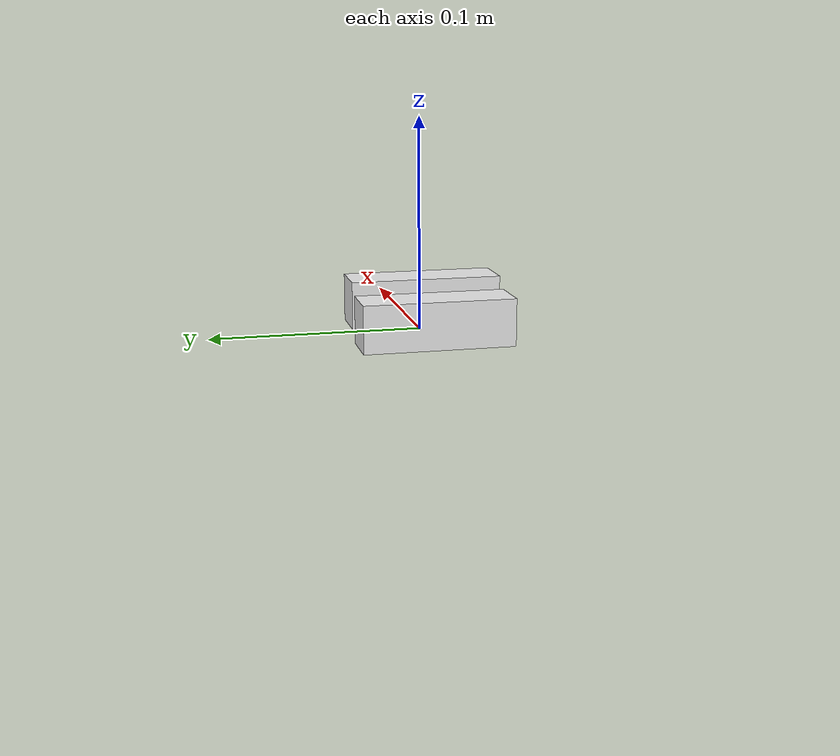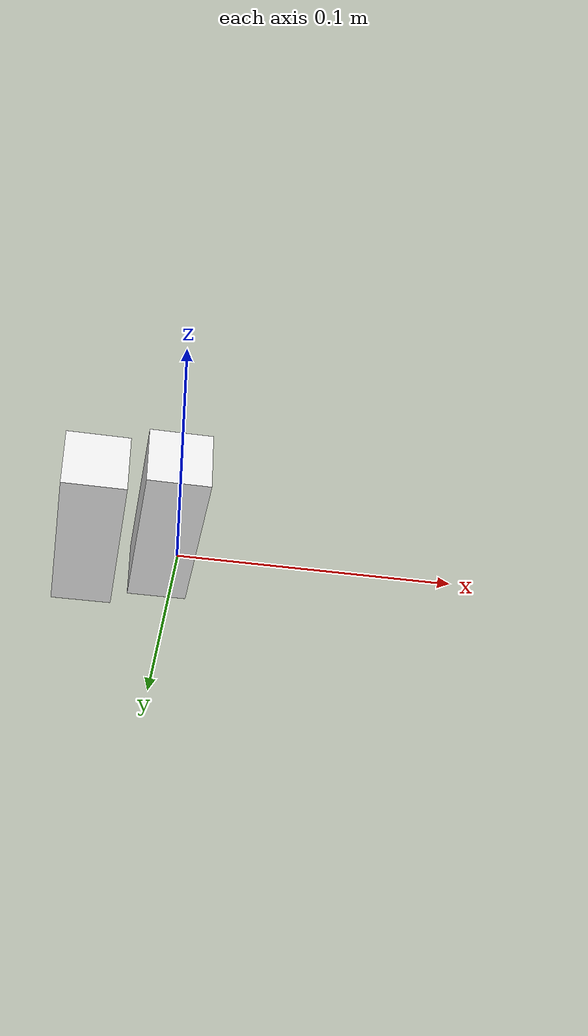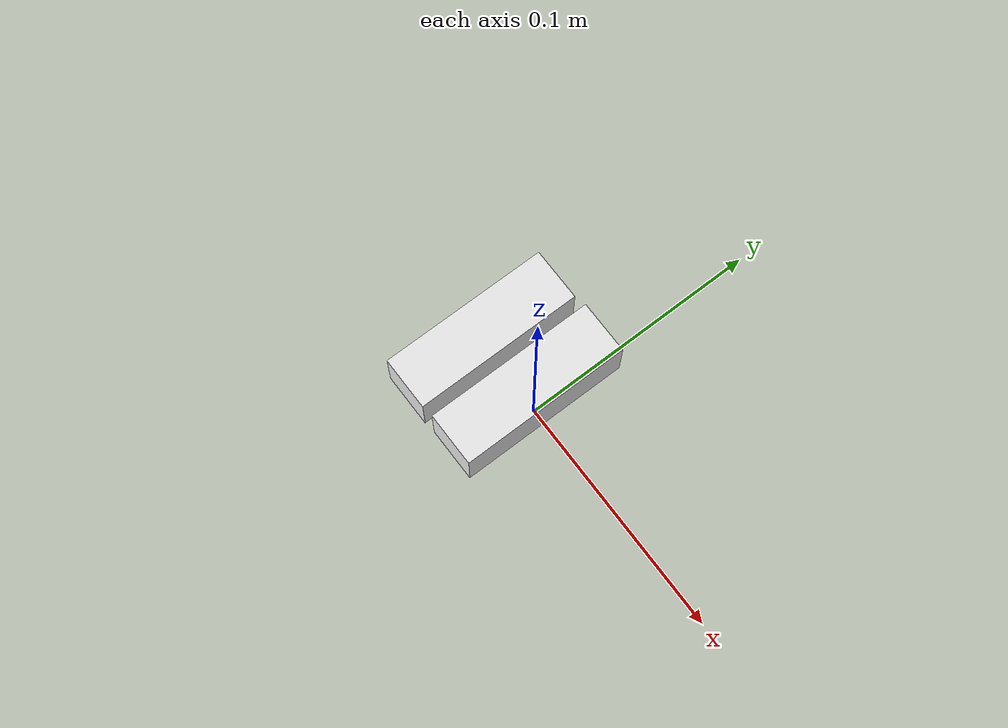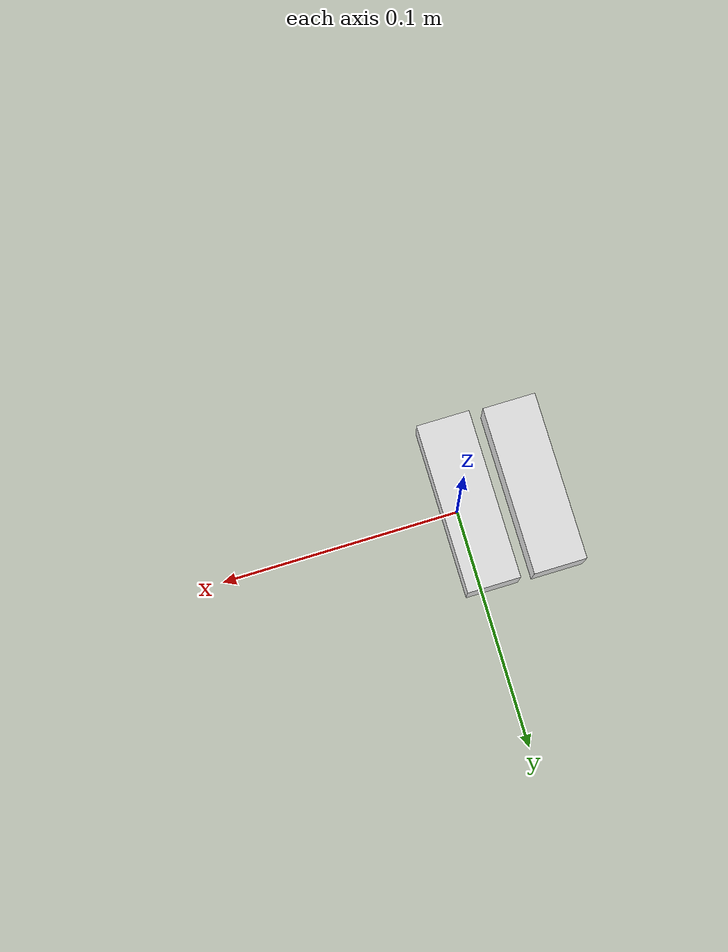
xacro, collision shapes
<?xml version="1.0"?>
<robot xmlns:sensor="http://playerstage.sourceforge.net/gazebo/xmlschema/#sensor"
       xmlns:controller="http://playerstage.sourceforge.net/gazebo/xmlschema/#controller"
       xmlns:interface="http://playerstage.sourceforge.net/gazebo/xmlschema/#interface"
       xmlns:xacro="http://www.ros.org/wiki/xacro"
       name="robotis_mini" >

  <xacro:include filename="materials.urdf.xacro" />
  <xacro:include filename="common.urdf.xacro" />
  <xacro:include filename="servo.urdf.xacro" />

  <xacro:include filename="base.urdf.xacro" />
  <xacro:include filename="body.urdf.xacro" />
  <xacro:include filename="arm.urdf.xacro" />
  <xacro:include filename="hand.urdf.xacro" />
  <xacro:include filename="leg.urdf.xacro" />

  <xacro:include filename="ros2_control.urdf.xacro" />

  <xacro:robotis_mini_ros2 />

  <xacro:robotis_mini_base name="base"/>

  <xacro:robotis_mini_body parent="base_link" />

  <xacro:robotis_mini_arm side="l" reflect="1" parent="l_shoulder_anchor_link" />
  <xacro:robotis_mini_arm side="r" reflect="-1" parent="r_shoulder_anchor_link" />

  <xacro:robotis_mini_leg side="l" reflect="1" parent="l_hip_anchor_link" />
  <xacro:robotis_mini_leg side="r" reflect="-1" parent="r_hip_anchor_link" />

  <gazebo reference="r_forefoot_link">
    <sensor name="r_forefoot_link_contact" type="contact">
      <always_on>true</always_on>
      <update_rate>30</update_rate>
      <contact>
        <collision>r_foot_link_fixed_joint_lump__r_forefoot_link_collision_1</collision>
      </contact>
    </sensor>
  </gazebo>

  <gazebo reference="l_forefoot_link">
    <sensor name="l_forefoot_link_contact" type="contact">
      <always_on>true</always_on>
      <update_rate>30</update_rate>
      <contact>
        <collision>l_foot_link_fixed_joint_lump__l_forefoot_link_collision_1</collision>
      </contact>
    </sensor>
  </gazebo>

  <gazebo reference="r_sole_link">
    <sensor name="r_sole_link_contact" type="contact">
      <always_on>true</always_on>
      <update_rate>30</update_rate>
      <contact>
        <collision>r_foot_link_fixed_joint_lump__r_sole_link_collision_2</collision>
      </contact>
    </sensor>
  </gazebo>

  <gazebo reference="l_sole_link">
    <sensor name="l_sole_link_contact" type="contact">
      <always_on>true</always_on>
      <update_rate>30</update_rate>
      <contact>
        <collision>l_foot_link_fixed_joint_lump__l_sole_link_collision_2</collision>
      </contact>
    </sensor>
  </gazebo>

   <!-- camera -->
  <gazebo reference="camera_link">
    <sensor type="camera" name="camera">
      <update_rate>30.0</update_rate>
      <camera name="head">
        <horizontal_fov>1.3962634</horizontal_fov>
        <image>
          <width>640</width>
          <height>480</height>
          <format>R8G8B8</format>
        </image>
        <clip>
          <near>0.02</near>
          <far>300</far>
        </clip>
        <noise>
          <type>gaussian</type>
          <!-- Noise is sampled independently per pixel on each frame.
               That pixel's noise value is added to each of its color
               channels, which at that point lie in the range [0,1]. -->
          <mean>0.0</mean>
          <stddev>0.007</stddev>
        </noise>
      </camera>
    </sensor>
  </gazebo>

</robot>

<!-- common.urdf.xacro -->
<robot xmlns:sensor="http://playerstage.sourceforge.net/gazebo/xmlschema/#sensor"
       xmlns:controller="http://playerstage.sourceforge.net/gazebo/xmlschema/#controller"
   xmlns:interface="http://playerstage.sourceforge.net/gazebo/xmlschema/#interface"
       xmlns:xacro="http://ros.org/wiki/xacro">

  <xacro:property name="M_PI" value="3.1415926535897931" />
  <xacro:property name="STL_SCALE" value="0.001 0.001 0.001" />
  <xacro:property name="INERTIA_SCALE" value="${1.2645021e-6 * 1e-6}" />
  <xacro:property name="MASS_DMFB01" value="0.026" />
  <xacro:property name="MASS_DMBB02" value="0.021" />
  <xacro:property name="MASS_DMFB03" value="0.005" />
  <xacro:property name="MASS_DMFB04" value="0.007" />
  <xacro:property name="MASS_DMFB05" value="0.011" />
  <xacro:property name="MASS_DMFB06" value="0.016" />
  <xacro:property name="MASS_DMFB07" value="0.009" />
  <xacro:property name="MASS_DMFF01" value="0.017" />
  <xacro:property name="MASS_SPU5"   value="0.001" />
  <xacro:property name="MASS_SPD3B3" value="0.001" />
  <xacro:property name="MASS_SPD3B5" value="0.001" />
  <xacro:property name="MASS_SPD3B7" value="0.001" />
  <xacro:property name="MASS_SPD4B5" value="0.001" />
  <xacro:property name="MASS_SPD7V4" value="0.001" />
  <xacro:property name="MASS_SPL2B2" value="0.001" />
  <xacro:property name="MASS_SPO5"   value="0.001" />
  <xacro:property name="MASS_LB040"  value="0.056" />
  <xacro:property name="MASS_XL320"  value="0.020" />

  <xacro:macro name="friction_properties" params="link_name">
    <gazebo reference="${link_name}_link">
      <mu1>10000</mu1>
      <mu2>10000</mu2>
      <kp>10000.0</kp>
      <kd>100.0</kd>
      <minDepth>0.001</minDepth>
      <maxContacts>100</maxContacts>
    </gazebo>
  </xacro:macro>

  <xacro:macro name="robotis_mini_upgrade_body" params="name parent xyz rpy">
    <joint name="${name}_joint" type="fixed">
      <origin xyz="${xyz}" rpy="${rpy}" />
      <parent link="${parent}"/>
      <child link="${name}_link"/>
    </joint>
    <link name="${name}_link">
      <inertial>
        <origin
          xyz="-0.0091918 -0.00047008 -0.016078"
          rpy="0 0 0" />
        <mass
          value="0.2437" />
        <inertia
          ixx="9.5353E-05"
          ixy="-3.5005E-08"
          ixz="-9.1096E-06"
          iyy="6.6853E-05"
          iyz="7.5168E-07"
          izz="9.5174E-05" />
      </inertial>
      <visual>
        <origin
          xyz="0 0 0"
          rpy="0 0 0" />
        <geometry>
          <mesh
            filename="package://robotis_mini_model/meshes/Body.STL" />
        </geometry>
        <material
          name="">
          <color
            rgba="0.75294 0.75294 0.75294 1" />
        </material>
      </visual>
      <collision>
        <origin
          xyz="0 0 0"
          rpy="0 0 0" />
        <geometry>
          <mesh
            filename="package://robotis_mini_model/meshes/Body.STL" />
        </geometry>
      </collision>
    </link>

    <link name="left_arm_socket_link" />
    <joint name="left_arm_socket_joint" type="fixed">
      <parent link="${name}_link"/>
      <child link="left_arm_socket_link"/>
      <origin xyz="0 0 0.038998" rpy="0 0 -1.5708" />
    </joint>

    <link name="right_arm_socket_link" />
    <joint name="right_arm_socket_joint" type="fixed">
      <parent link="${name}_link"/>
      <child link="right_arm_socket_link"/>
      <origin xyz="0 0 -0.038998" rpy="0 0 -1.5708" />
    </joint>

    <link name="left_leg_socket_link" />
    <joint name="left_leg_socket_joint" type="fixed">
      <parent link="${name}_link"/>
      <child link="left_leg_socket_link"/>
      <origin xyz="0 0.072 0.024" rpy="1.5633 -1.5708 1.5708" />
    </joint>

    <link name="right_leg_socket_link" />
    <joint name="right_leg_socket_joint" type="fixed">
      <parent link="${name}_link"/>
      <child link="right_leg_socket_link"/>
      <origin xyz="0 0.072 -0.024" rpy="1.5708 -1.5708 1.5708" />
    </joint>

  </xacro:macro>

  <xacro:macro name="robotis_mini_dmfb01" params="name parent xyz rpy">
    <joint name="${name}_joint" type="fixed">
      <origin xyz="${xyz}" rpy="${rpy}" />
      <parent link="${parent}"/>
      <child link="${name}_link"/>
    </joint>
    <link name="${name}_link">
      <visual>
        <origin xyz="0 0 0" rpy="0 0 0" />
        <geometry>
          <mesh filename="package://robotis_mini_model/meshes/DMF-B01(W).stl" scale="${STL_SCALE}" />
        </geometry>
        <material name="White" />
      </visual>
      <inertial>
        <origin xyz="0.000442e-3 2.022341e-3 8.475896e-3" rpy="0 0 0" />
        <mass value="${MASS_DMFB01}" />
        <inertia
            ixx="${20832122.0 * INERTIA_SCALE}" ixy="${49.294094 * INERTIA_SCALE}" ixz="${-244.503922 * INERTIA_SCALE}"
            iyy="${26496152.0 * INERTIA_SCALE}" iyz="${6067726.0 * INERTIA_SCALE}"
            izz="${19461042.0 * INERTIA_SCALE}"/>
      </inertial>
      <collision>
        <geometry>
          <sphere radius="0" />
        </geometry>
      </collision>
    </link>
    <xacro:friction_properties link_name="${name}"/>
  </xacro:macro>

  <xacro:macro name="robotis_mini_dmbb02" params="name parent xyz rpy">
    <joint name="${name}_joint" type="fixed">
      <origin xyz="${xyz}" rpy="${rpy}" />
      <parent link="${parent}"/>
      <child link="${name}_link"/>
    </joint>
    <link name="${name}_link">
      <visual>
        <origin xyz="0 0 0" rpy="0 0 0" />
        <geometry>
          <mesh filename="package://robotis_mini_model/meshes/DMB-B02(W).stl" scale="${STL_SCALE}" />
        </geometry>
        <material name="White" />
      </visual>
      <inertial>
        <origin xyz="0.0 8.773967e-3 -22.151331e-3" rpy="0 0 0" />
        <mass value="${MASS_DMBB02}" />
        <inertia
            ixx="${13688240.0 * INERTIA_SCALE}" ixy="0.0" ixz="0.0"
            iyy="${14463692.0 * INERTIA_SCALE}" iyz="${-6208989.0 * INERTIA_SCALE}"
            izz="${14246080.0 * INERTIA_SCALE}"/>
      </inertial>
      <collision>
        <geometry>
          <sphere radius="0" />
        </geometry>
      </collision>
    </link>
    <xacro:friction_properties link_name="${name}"/>
  </xacro:macro>

  <xacro:macro name="robotis_mini_dmfb03" params="name parent xyz rpy">
    <joint name="${name}_joint" type="fixed">
      <origin xyz="${xyz}" rpy="${rpy}" />
      <parent link="${parent}"/>
      <child link="${name}_link"/>
    </joint>
    <link name="${name}_link">
      <visual>
        <origin xyz="0 0 0" rpy="0 0 0" />
        <geometry>
          <mesh filename="package://robotis_mini_model/meshes/DMF-B03(W).stl" scale="${STL_SCALE}" />
        </geometry>
        <material name="White" />
      </visual>
      <inertial>
        <origin xyz="0.0 -8.846923e-3 7.432426e-3" rpy="0 0 0" />
        <mass value="${MASS_DMFB03}" />
        <inertia
            ixx="${466071.71875 * INERTIA_SCALE}" ixy="0.0" ixz="0.0"
            iyy="${1082072.625 * INERTIA_SCALE}" iyz="${124090.367188 * INERTIA_SCALE}"
            izz="${1084667.75 * INERTIA_SCALE}"/>
      </inertial>
      <collision>
        <geometry>
          <sphere radius="0" />
        </geometry>
      </collision>
    </link>
    <xacro:friction_properties link_name="${name}"/>
  </xacro:macro>

  <xacro:macro name="robotis_mini_dmfb04" params="name parent xyz rpy">
    <joint name="${name}_joint" type="fixed">
      <origin xyz="${xyz}" rpy="${rpy}" />
      <parent link="${parent}"/>
      <child link="${name}_link"/>
    </joint>
    <link name="${name}_link">
      <visual>
        <origin xyz="0 0 0" rpy="0 0 0" />
        <geometry>
          <mesh filename="package://robotis_mini_model/meshes/DMF-B04(W).stl" scale="${STL_SCALE}" />
        </geometry>
        <material name="White" />
      </visual>
      <inertial>
        <origin xyz="0.0 -16.650940e-3 3.893445e-3" rpy="0 0 0" />
        <mass value="${MASS_DMFB04}" />
        <inertia
            ixx="${1173912.25 * INERTIA_SCALE}" ixy="0.0" ixz="0.0"
            iyy="${1258405.75 * INERTIA_SCALE}" iyz="${278750.0 * INERTIA_SCALE}"
            izz="${1855787.0 * INERTIA_SCALE}"/>
      </inertial>
      <collision>
        <geometry>
          <sphere radius="0" />
        </geometry>
      </collision>
    </link>
    <xacro:friction_properties link_name="${name}"/>
  </xacro:macro>

  <xacro:macro name="robotis_mini_dmfb05" params="name parent xyz rpy">
    <joint name="${name}_joint" type="fixed">
      <origin xyz="${xyz}" rpy="${rpy}" />
      <parent link="${parent}"/>
      <child link="${name}_link"/>
    </joint>
    <link name="${name}_link">
      <visual>
        <origin xyz="0 0 0" rpy="0 0 0" />
        <geometry>
          <mesh filename="package://robotis_mini_model/meshes/DMF-B05(W).stl" scale="${STL_SCALE}" />
        </geometry>
        <material name="White" />
      </visual>
      <inertial>
        <origin xyz="0.000002e-3 6.883461e-3 17.899050e-3" rpy="0 0 0" />
        <mass value="${MASS_DMFB05}" />
        <inertia
            ixx="${3408129.0 * INERTIA_SCALE}" ixy="0.0" ixz="0.0"
            iyy="${4633182.5 * INERTIA_SCALE}" iyz="${442301.09375 * INERTIA_SCALE}"
            izz="${2912481.0 * INERTIA_SCALE}"/>
      </inertial>
      <collision>
        <geometry>
          <sphere radius="0" />
        </geometry>
      </collision>
    </link>
    <xacro:friction_properties link_name="${name}"/>
  </xacro:macro>

  <xacro:macro name="robotis_mini_dmfb06" params="name parent xyz rpy">
    <joint name="${name}_joint" type="fixed">
      <origin xyz="${xyz}" rpy="${rpy}" />
      <parent link="${parent}"/>
      <child link="${name}_link"/>
    </joint>
    <link name="${name}_link">
      <visual>
        <origin xyz="0 0 0" rpy="0 0 0" />
        <geometry>
          <mesh filename="package://robotis_mini_model/meshes/DMF-B06(W).stl" scale="${STL_SCALE}" />
        </geometry>
        <material name="White" />
      </visual>
      <inertial>
        <origin xyz="-0.000081e-3 10.773119e-3 17.660477e-3" rpy="0 0 0" />
        <mass value="${MASS_DMFB06}" />
        <inertia
            ixx="${11040391.0 * INERTIA_SCALE}" ixy="${-7.861741 * INERTIA_SCALE}" ixz="${-34.157631 * INERTIA_SCALE}"
            iyy="${13017446.0 * INERTIA_SCALE}" iyz="${1497572.125 * INERTIA_SCALE}"
            izz="${3562647.5 * INERTIA_SCALE}"/>
      </inertial>
      <collision>
        <geometry>
          <sphere radius="0" />
        </geometry>
      </collision>
    </link>
    <xacro:friction_properties link_name="${name}"/>
  </xacro:macro>

  <xacro:macro name="robotis_mini_dmfb07" params="name parent xyz rpy">
    <joint name="${name}_joint" type="fixed">
      <origin xyz="${xyz}" rpy="${rpy}" />
      <parent link="${parent}"/>
      <child link="${name}_link"/>
    </joint>
    <link name="${name}_link">
      <visual>
        <origin xyz="0 0 0" rpy="0 0 0" />
        <geometry>
          <mesh filename="package://robotis_mini_model/meshes/DMF-B07(GR).stl" scale="${STL_SCALE}" />
        </geometry>
        <material name="LightGrey" />
      </visual>
      <inertial>
        <origin xyz="0.0 0.241608e-3 0.0" rpy="0 0 0" />
        <mass value="${MASS_DMFB07}" />
        <inertia
            ixx="${3827552.0 * INERTIA_SCALE}" ixy="0.0" ixz="0.0"
            iyy="${5052905.0 * INERTIA_SCALE}" iyz="0.0"
            izz="${1241146.625 * INERTIA_SCALE}"/>
      </inertial>
      <collision>
        <geometry>
          <sphere radius="0" />
        </geometry>
      </collision>
    </link>
    <xacro:friction_properties link_name="${name}"/>
  </xacro:macro>

  <xacro:macro name="robotis_mini_dmff01" params="name parent xyz rpy">
    <joint name="${name}_joint" type="fixed">
      <origin xyz="${xyz}" rpy="${rpy}" />
      <parent link="${parent}"/>
      <child link="${name}_link"/>
    </joint>
    <link name="${name}_link">
      <visual>
        <origin xyz="0 0 0" rpy="0 0 0" />
        <geometry>
          <mesh filename="package://robotis_mini_model/meshes/DMF-F01(W).stl" scale="${STL_SCALE}" />
        </geometry>
        <material name="White" />
      </visual>
      <inertial>
        <origin xyz="0.000021e-3 14.665582e-3 -8.712881e-3" rpy="0 0 0" />
        <mass value="${MASS_DMFF01}" />
        <inertia
            ixx="${5944991.5 * INERTIA_SCALE}" ixy="0.0" ixz="0.0"
            iyy="${6602753.0 * INERTIA_SCALE}" iyz="${1374377.75 * INERTIA_SCALE}"
            izz="${6640028.5 * INERTIA_SCALE}"/>
      </inertial>
      <collision>
        <geometry>
          <sphere radius="0" />
        </geometry>
      </collision>
    </link>
    <xacro:friction_properties link_name="${name}"/>
  </xacro:macro>

  <xacro:macro name="robotis_mini_spu5" params="name parent xyz rpy">
    <joint name="${name}_joint" type="fixed">
      <origin xyz="${xyz}" rpy="${rpy}" />
      <parent link="${parent}"/>
      <child link="${name}_link"/>
    </joint>
    <link name="${name}_link">
      <visual>
        <origin xyz="0 0 0" rpy="0 0 0" />
        <geometry>
          <mesh filename="package://robotis_mini_model/meshes/SPU-5(W).stl" scale="${STL_SCALE}" />
        </geometry>
        <material name="White" />
      </visual>
      <inertial>
        <origin xyz="0.0 1.31172e-3 0.0" rpy="0 0 0" />
        <mass value="${MASS_SPU5}" />
        <inertia
            ixx="${21479.599609 * INERTIA_SCALE}" ixy="0.0" ixz="0.0"
            iyy="${41593.949219 * INERTIA_SCALE}" iyz="0.0"
            izz="${22189.505859 * INERTIA_SCALE}"/>
      </inertial>
      <collision>
        <geometry>
          <sphere radius="0" />
        </geometry>
      </collision>
    </link>
    <xacro:friction_properties link_name="${name}"/>
  </xacro:macro>

  <xacro:macro name="robotis_mini_spd3b3" params="name parent xyz rpy">
    <joint name="${name}_joint" type="fixed">
      <origin xyz="${xyz}" rpy="${rpy}" />
      <parent link="${parent}"/>
      <child link="${name}_link"/>
    </joint>
    <link name="${name}_link">
      <visual>
        <origin xyz="0 0 0" rpy="0 0 0" />
        <geometry>
          <mesh filename="package://robotis_mini_model/meshes/SPD-3B3(W).stl" scale="${STL_SCALE}" />
        </geometry>
        <material name="White" />
      </visual>
      <inertial>
        <origin xyz="0.0 0.0 0.0" rpy="0 0 0" />
        <mass value="${MASS_SPD3B3}" />
        <inertia
            ixx="${13782.404297 * INERTIA_SCALE}" ixy="0.0" ixz="0.0"
            iyy="${26906.732422 * INERTIA_SCALE}" iyz="0.0"
            izz="${13782.404297 * INERTIA_SCALE}"/>
      </inertial>
      <collision>
        <geometry>
          <sphere radius="0" />
        </geometry>
      </collision>
    </link>
    <xacro:friction_properties link_name="${name}"/>
  </xacro:macro>

  <xacro:macro name="robotis_mini_spd3b5" params="name parent xyz rpy">
    <joint name="${name}_joint" type="fixed">
      <origin xyz="${xyz}" rpy="${rpy}" />
      <parent link="${parent}"/>
      <child link="${name}_link"/>
    </joint>
    <link name="${name}_link">
      <visual>
        <origin xyz="0 0 0" rpy="0 0 0" />
        <geometry>
          <mesh filename="package://robotis_mini_model/meshes/SPD-3B5(W).stl" scale="${STL_SCALE}" />
        </geometry>
        <material name="White" />
      </visual>
      <inertial>
        <origin xyz="0.0 0.0 0.0" rpy="0 0 0" />
        <mass value="${MASS_SPD3B5}" />
        <inertia
            ixx="${24062.111328 * INERTIA_SCALE}" ixy="0.0" ixz="0.0"
            iyy="${86362.328125 * INERTIA_SCALE}" iyz="0.0"
            izz="${63420.257812 * INERTIA_SCALE}"/>
      </inertial>
      <collision>
        <geometry>
          <sphere radius="0" />
        </geometry>
      </collision>
    </link>
    <xacro:friction_properties link_name="${name}"/>
  </xacro:macro>

  <xacro:macro name="robotis_mini_spd3b7" params="name parent xyz rpy">
    <joint name="${name}_joint" type="fixed">
      <origin xyz="${xyz}" rpy="${rpy}" />
      <parent link="${parent}"/>
      <child link="${name}_link"/>
    </joint>
    <link name="${name}_link">
      <visual>
        <origin xyz="0 0 0" rpy="0 0 0" />
        <geometry>
          <mesh filename="package://robotis_mini_model/meshes/SPD-3B7(W).stl" scale="${STL_SCALE}" />
        </geometry>
        <material name="White" />
      </visual>
      <inertial>
        <origin xyz="0.0 0.0 0.0" rpy="0 0 0" />
        <mass value="${MASS_SPD3B7}" />
        <inertia
            ixx="${34343.71875 * INERTIA_SCALE}" ixy="0.0" ixz="0.0"
            iyy="${207934.0625 * INERTIA_SCALE}" iyz="0.0"
            izz="${175172.40625 * INERTIA_SCALE}"/>
      </inertial>
      <collision>
        <geometry>
          <sphere radius="0" />
        </geometry>
      </collision>
    </link>
    <xacro:friction_properties link_name="${name}"/>
  </xacro:macro>

  <xacro:macro name="robotis_mini_spd4b5" params="name parent xyz rpy">
    <joint name="${name}_joint" type="fixed">
      <origin xyz="${xyz}" rpy="${rpy}" />
      <parent link="${parent}"/>
      <child link="${name}_link"/>
    </joint>
    <link name="${name}_link">
      <visual>
        <origin xyz="0 0 0" rpy="0 0 0" />
        <geometry>
          <mesh filename="package://robotis_mini_model/meshes/SPD-4B5(W).stl" scale="${STL_SCALE}" />
        </geometry>
        <material name="White" />
      </visual>
      <inertial>
        <origin xyz="0.0 0.0 0.0" rpy="0 0 0" />
        <mass value="${MASS_SPD4B5}" />
        <inertia
            ixx="${56062.675781 * INERTIA_SCALE}" ixy="0.0" ixz="0.0"
            iyy="${140721.21875 * INERTIA_SCALE}" iyz="0.0"
            izz="${86163.601562 * INERTIA_SCALE}"/>
      </inertial>
      <collision>
        <geometry>
          <sphere radius="0" />
        </geometry>
      </collision>
    </link>
    <xacro:friction_properties link_name="${name}"/>
  </xacro:macro>

  <xacro:macro name="robotis_mini_spd7v4" params="name parent xyz rpy">
    <joint name="${name}_joint" type="fixed">
      <origin xyz="${xyz}" rpy="${rpy}" />
      <parent link="${parent}"/>
      <child link="${name}_link"/>
    </joint>
    <link name="${name}_link">
      <visual>
        <origin xyz="0 0 0" rpy="0 0 0" />
        <geometry>
          <mesh filename="package://robotis_mini_model/meshes/SPD-7V4(W).stl" scale="${STL_SCALE}" />
        </geometry>
        <material name="White" />
      </visual>
      <inertial>
        <origin xyz="0.0 -0.147827e-3 0.0" rpy="0 0 0" />
        <mass value="${MASS_SPD7V4}" />
        <inertia
            ixx="${30369.943359 * INERTIA_SCALE}" ixy="0.0" ixz="0.0"
            iyy="${98737.554688 * INERTIA_SCALE}" iyz="0.0"
            izz="${69714.84375 * INERTIA_SCALE}"/>
      </inertial>
      <collision>
        <geometry>
          <sphere radius="0" />
        </geometry>
      </collision>
    </link>
    <xacro:friction_properties link_name="${name}"/>
  </xacro:macro>

  <xacro:macro name="robotis_mini_spl2b2" params="name parent xyz rpy">
    <joint name="${name}_joint" type="fixed">
      <origin xyz="${xyz}" rpy="${rpy}" />
      <parent link="${parent}"/>
      <child link="${name}_link"/>
    </joint>
    <link name="${name}_link">
      <visual>
        <origin xyz="0 0 0" rpy="0 0 0" />
        <geometry>
          <mesh filename="package://robotis_mini_model/meshes/SPL-2B2(W).stl" scale="${STL_SCALE}" />
        </geometry>
        <material name="White" />
      </visual>
      <inertial>
        <origin xyz="3.975824e-3 0.0 -5.846319e-3" rpy="0 0 0" />
        <mass value="${MASS_SPL2B2}" />
        <inertia
            ixx="${23641.265625 * INERTIA_SCALE}" ixy="0.0" ixz="${-6543.848633 * INERTIA_SCALE}"
            iyy="${25356.189453 * INERTIA_SCALE}" iyz="0.0"
            izz="${16550.568359 * INERTIA_SCALE}"/>
      </inertial>
      <collision>
        <geometry>
          <sphere radius="0" />
        </geometry>
      </collision>
    </link>
    <xacro:friction_properties link_name="${name}"/>
  </xacro:macro>

  <xacro:macro name="robotis_mini_spo5" params="name parent xyz rpy">
    <joint name="${name}_joint" type="fixed">
      <origin xyz="${xyz}" rpy="${rpy}" />
      <parent link="${parent}"/>
      <child link="${name}_link"/>
    </joint>
    <link name="${name}_link">
      <visual>
        <origin xyz="0 0 0" rpy="0 0 0" />
        <geometry>
          <mesh filename="package://robotis_mini_model/meshes/SPO-5(GR).stl" scale="${STL_SCALE}" />
        </geometry>
        <material name="LightGrey" />
      </visual>
      <inertial>
        <origin xyz="-0.004686e-3 1.501381e-3 -0.004686e-3" rpy="0 0 0" />
        <mass value="${MASS_SPO5}" />
        <inertia
            ixx="${11954.899414 * INERTIA_SCALE}" ixy="${-2.997807 * INERTIA_SCALE}" ixz="${10.174902 * INERTIA_SCALE}"
            iyy="${23102.574219 * INERTIA_SCALE}" iyz="${-2.997788 * INERTIA_SCALE}"
            izz="${11954.899414 * INERTIA_SCALE}"/>
      </inertial>
      <collision>
        <geometry>
          <sphere radius="0" />
        </geometry>
      </collision>
    </link>
    <xacro:friction_properties link_name="${name}"/>
  </xacro:macro>

  <xacro:macro name="robotis_mini_lb040" params="name parent xyz rpy">
    <joint name="${name}_joint" type="fixed">
      <origin xyz="${xyz}" rpy="${rpy}" />
      <parent link="${parent}"/>
      <child link="${name}_link"/>
    </joint>
    <link name="${name}_link">
      <visual>
        <origin xyz="0 0 0" rpy="0 0 0" />
        <geometry>
          <box size="0.07 0.022 0.022" />
        </geometry>
        <material name="White" />
      </visual>
      <inertial>
        <origin xyz="0.0 0.0 0.0" rpy="0 0 0" />
        <mass value="${MASS_LB040}" />
        <inertia
            ixx="${0.056 * (0.022*0.022 + 0.022*0.022) / 12}" ixy="0.0" ixz="0.0"
            iyy="${0.056 * (0.07*0.07 + 0.022*0.022) / 12}" iyz="0.0"
            izz="${0.056 * (0.022*0.022 + 0.07*0.07) / 12}"/>
      </inertial>
      <collision>
        <geometry>
          <box size="0.07 0.022 0.022" />
        </geometry>
      </collision>
    </link>
    <xacro:friction_properties link_name="${name}"/>
  </xacro:macro>

  <xacro:macro name="robotis_mini_xl320" params="name">
    <link name="${name}_link">
      <visual>
        <origin xyz="0 0 0" rpy="0 0 0" />
        <geometry>
          <mesh filename="package://robotis_mini_model/meshes/XL-320D.stl" scale="${STL_SCALE}" />
        </geometry>
        <material name="Grey" />
      </visual>
      <inertial>
        <origin xyz="0.0 -6.745858e-3 0.697233e-3" rpy="0 0 0" />
        <mass value="${MASS_XL320}" />
        <inertia
            ixx="${2227707.0 * INERTIA_SCALE}" ixy="0.0" ixz="0.0"
            iyy="${1477880.25 * INERTIA_SCALE}" iyz="${-77147.132812 * INERTIA_SCALE}"
            izz="${1931732.375 * INERTIA_SCALE}"/>
      </inertial>
      <collision>
        <geometry>
          <sphere radius="0" />
        </geometry>
      </collision>
    </link>
    <xacro:friction_properties link_name="${name}"/>
    <gazebo reference="${name}_link">
      <material>Gazebo/DarkGrey</material>
    </gazebo>
  </xacro:macro>

</robot>

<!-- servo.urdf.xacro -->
<robot xmlns:sensor="http://playerstage.sourceforge.net/gazebo/xmlschema/#sensor"
       xmlns:controller="http://playerstage.sourceforge.net/gazebo/xmlschema/#controller"
       xmlns:interface="http://playerstage.sourceforge.net/gazebo/xmlschema/#interface"
       xmlns:xacro="http://ros.org/wiki/xacro">

  <property name="M_PI" value="3.1415926535897931" />
  <property name="XL320_MAX_TORQUE" value="0.39" />
  <property name="XL320_MAX_VELOCITY" value="${114 * 2*M_PI / 60}" />
  <property name="XL320_DAMPING" value="0.7" />

  <xacro:macro name="robotis_mini_transmission" params="name">
    <transmission name="${name}_tran">
      <type>transmission_interface/SimpleTransmission</type>
      <joint name="${name}_joint">
        <hardwareInterface>EffortJointInterface</hardwareInterface>
      </joint>
      <actuator name="${name}_motor">
        <hardwareInterface>EffortJointInterface</hardwareInterface>
        <mechanicalReduction>1</mechanicalReduction>
      </actuator>
    </transmission>
  </xacro:macro>

  <xacro:macro name="robotis_mini_servo_fixed" params="name parent xyz rpy initial_rotation reflect">
    <joint name="${name}_servo_joint" type="fixed">
      <origin xyz="${xyz}" rpy="${rpy}" />
      <parent link="${parent}"/>
      <child link="${name}_servo_link"/>
    </joint>
    <xacro:robotis_mini_xl320 name="${name}_servo" />
    <joint name="${name}_joint" type="revolute">
      <axis xyz="0 0 ${-reflect}" />
      <limit lower="${-3*M_PI/4.0}" upper="${3*M_PI/4.0}" effort="${XL320_MAX_TORQUE}" velocity="${XL320_MAX_VELOCITY}" />
      <origin xyz="0 0 0" rpy="0 0 ${initial_rotation}" />
      <parent link="${name}_servo_link"/>
      <child link="${name}_link"/>
    </joint>
    <link name="${name}_link">
      <inertial>
        <mass value="0.0001" />
        <inertia ixx="1.0e-12" ixy="0.0" ixz="0.0" iyy="1.0e-12" iyz="0.0" izz="1.0e-12"/>
      </inertial>
    </link>
    <xacro:robotis_mini_transmission name="${name}" />
  </xacro:macro>

  <xacro:macro name="robotis_mini_servo_rotating" params="name parent xyz rpy initial_rotation reflect">
    <joint name="${name}_axis_joint" type="fixed">
      <origin xyz="${xyz}" rpy="${rpy}" />
      <parent link="${parent}"/>
      <child link="${name}_axis_link"/>
    </joint>
    <link name="${name}_axis_link">
      <inertial>
        <mass value="0.0001" />
        <inertia ixx="1.0e-12" ixy="0.0" ixz="0.0" iyy="1.0e-12" iyz="0.0" izz="1.0e-12"/>
      </inertial>
    </link>
    <joint name="${name}_joint" type="revolute">
      <axis xyz="0 0 ${-reflect}" />
      <limit lower="${-M_PI/2.0}" upper="${M_PI/2.0}" effort="${XL320_MAX_TORQUE}" velocity="${XL320_MAX_VELOCITY}" />
      <origin xyz="0 0 0" rpy="0 0 ${initial_rotation}" />
      <parent link="${name}_axis_link"/>
      <child link="${name}_link"/>
    </joint>
    <xacro:robotis_mini_xl320 name="${name}" />
    <xacro:robotis_mini_transmission name="${name}" />
  </xacro:macro>

  <xacro:macro name="robotis_mini_servo_rotating_fake" params="name parent xyz rpy initial_rotation">
    <joint name="${name}_axis_joint" type="fixed">
      <origin xyz="${xyz}" rpy="${rpy}" />
      <parent link="${parent}"/>
      <child link="${name}_axis_link"/>
    </joint>
    <link name="${name}_axis_link">
      <inertial>
        <mass value="0.0001" />
        <inertia ixx="1.0e-12" ixy="0.0" ixz="0.0" iyy="1.0e-12" iyz="0.0" izz="1.0e-12"/>
      </inertial>
    </link>
    <joint name="${name}_joint" type="fixed">
      <axis xyz="0 0 1" />
      <origin xyz="0 0 0" rpy="0 0 ${initial_rotation}" />
      <parent link="${name}_axis_link"/>
      <child link="${name}_link"/>
    </joint>
    <xacro:robotis_mini_xl320 name="${name}" />
  </xacro:macro>

  <xacro:macro name="robotis_mini_servo_wheel" params="name">
    <xacro:robotis_mini_spo5 name="${name}_spo" parent="${name}_link" xyz="0 0 -0.015" rpy="${M_PI/2} 0 0" />
  </xacro:macro>

  <xacro:macro name="robotis_mini_servo_fixed_with_wheel" params="name parent xyz rpy initial_rotation reflect">
    <xacro:robotis_mini_servo_fixed name="${name}" parent="${parent}" xyz="${xyz}" rpy="${rpy}" initial_rotation="${initial_rotation}" reflect="${reflect}"/>
    <xacro:robotis_mini_servo_wheel name="${name}" />
  </xacro:macro>

  <xacro:macro name="robotis_mini_servo_rotating_with_wheel" params="name parent xyz rpy initial_rotation reflect">
    <xacro:robotis_mini_servo_rotating name="${name}" parent="${parent}" xyz="${xyz}" rpy="${rpy}" initial_rotation="${initial_rotation}" reflect="${reflect}"/>
    <xacro:robotis_mini_servo_wheel name="${name}" />
  </xacro:macro>

</robot>

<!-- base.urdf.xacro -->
<robot xmlns:sensor="http://playerstage.sourceforge.net/gazebo/xmlschema/#sensor"
       xmlns:controller="http://playerstage.sourceforge.net/gazebo/xmlschema/#controller"
       xmlns:interface="http://playerstage.sourceforge.net/gazebo/xmlschema/#interface"
       xmlns:xacro="http://ros.org/wiki/xacro">

  <xacro:macro name="robotis_mini_base" params="name">
    <link name="${name}_link" />
  </xacro:macro>

</robot>
